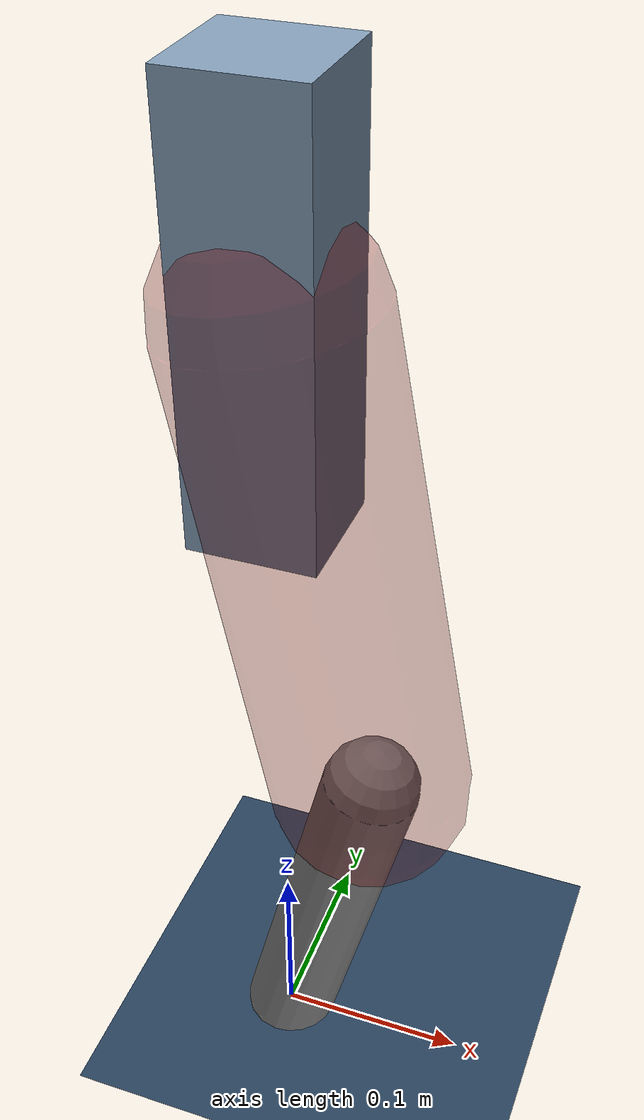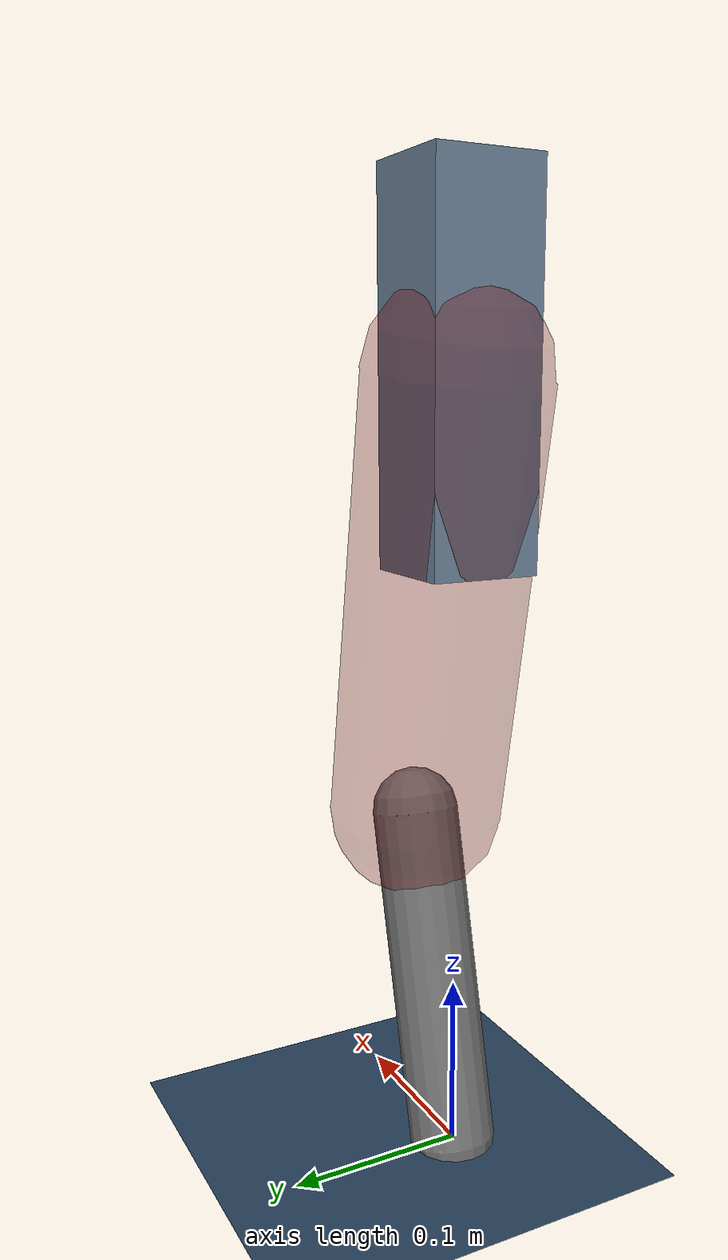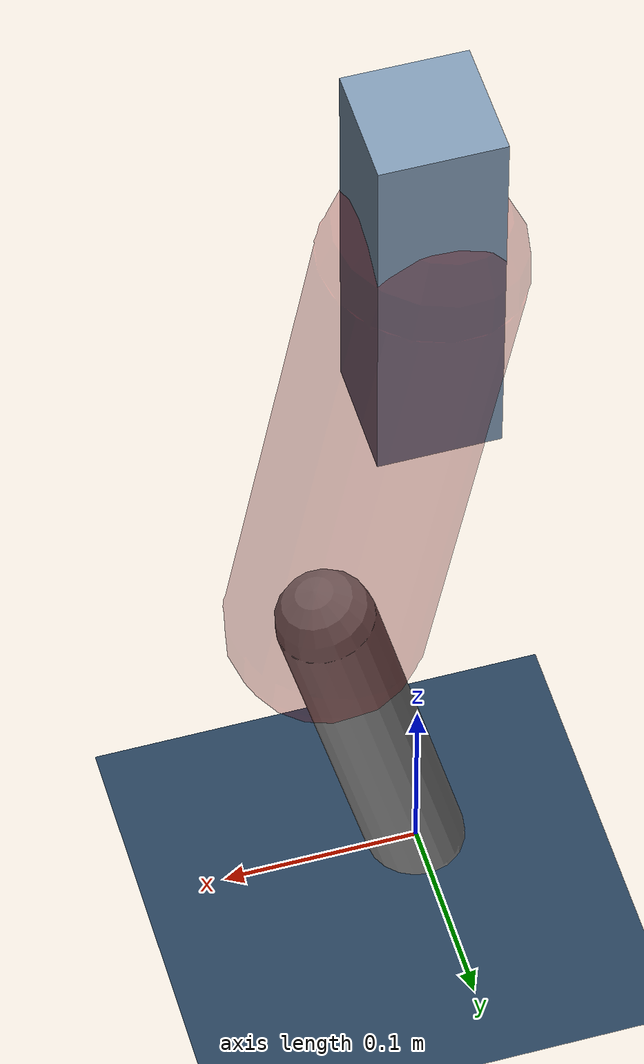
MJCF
<mujoco model="Hopper2D">
	<compiler inertiafromgeom="true" angle="radian" />
	<option timestep="0.001" integrator="implicit" cone="elliptic" solver="Newton" tolerance="1e-10" />

	<default>
		<geom contype="1" conaffinity="1" condim="3" friction="2 0.005 0.0001" solref="0.005 1" />
		<joint limited="true" damping="0.1" />
	</default>

	<asset>
		<texture name="skybox" type="skybox" builtin="gradient" rgb1=".4 .6 .8" rgb2="0 0 0" width="800" height="800" />
		<texture name="grid" type="2d" builtin="checker" rgb1=".1 .2 .3" rgb2=".2 .3 .4" width="300" height="300" mark="edge" markrgb=".2 .3 .4" />
		<material name="ground" texture="grid" texrepeat="1 1" texuniform="true" reflectance="0.1" />
		<material name="leg" rgba="0.5 0.6 0.7 1" />
	</asset>

	<worldbody>

		<geom name="floor" type="plane" size="5 5 0.25" material="ground" />

		<light directional="false" diffuse="0.8 0.8 0.8" specular="0.3 0.3 0.3" pos="0 0 2" dir="0 0 -1" />
		<light mode="targetbodycom" target="base" directional="false" diffuse="0.8 0.8 0.8" specular="0.3 0.3 0.3" pos="0 0 2" dir="0 0 -1" />

		<camera name="fixed" pos="0 -2 1" xyaxes="1 0 0 0 0 1" />
		<camera name="tracking" mode="trackcom" pos="0 -3 1" />

		<body name="root" pos="0 0 0.4369203633019929">
			<joint name="slide_x" type="slide" axis="1 0 0" range="-100 100" />
			<joint name="slide_z" type="slide" axis="0 0 1" range="0 10" />

			<body name="base" pos="0 0 0">
				<geom name="torso" type="box" size="0.03 0.03 0.1" mass="1.6960000000000002" material="leg" />

				<body name="link1" pos="0 0 0" euler="0 1.3826721975220504 0">
					<joint type="hinge" axis="0 -1 0" pos="0 0 0" name="hinge1" limited="true" range="-3.14 3.14" stiffness="0" damping="0.1" />
					<geom name="thigh" type="capsule" fromto="0 0 0 0.24955012620613298 0 0" size="0.05" rgba="0.5 0 0 0.3" mass="0.8552303281359458" />

					<body name="link2" pos="0.24955012620613298 0 0" euler="0 0.42684405849488855 0">
						<joint type="hinge" axis="0 -1 0" pos="0 0 0" name="hinge2" limited="true" range="-3.14 3.14" stiffness="0" damping="0.1" />
						<geom name="shank" type="capsule" fromto="0 0 0 0.19737023709585994 0 0" size="0.025" mass="0.3986961896766879" />

					</body>
				</body>
			</body>
		</body>
	</worldbody>

	<actuator>
		<motor name="torque1" joint="hinge1" ctrlrange="-38.33923848991135 38.33923848991135" ctrllimited="true" gear="1" />
		<motor name="torque2" joint="hinge2" ctrlrange="-50.229170894048345 50.229170894048345" ctrllimited="true" gear="1" />
	</actuator>
</mujoco>
